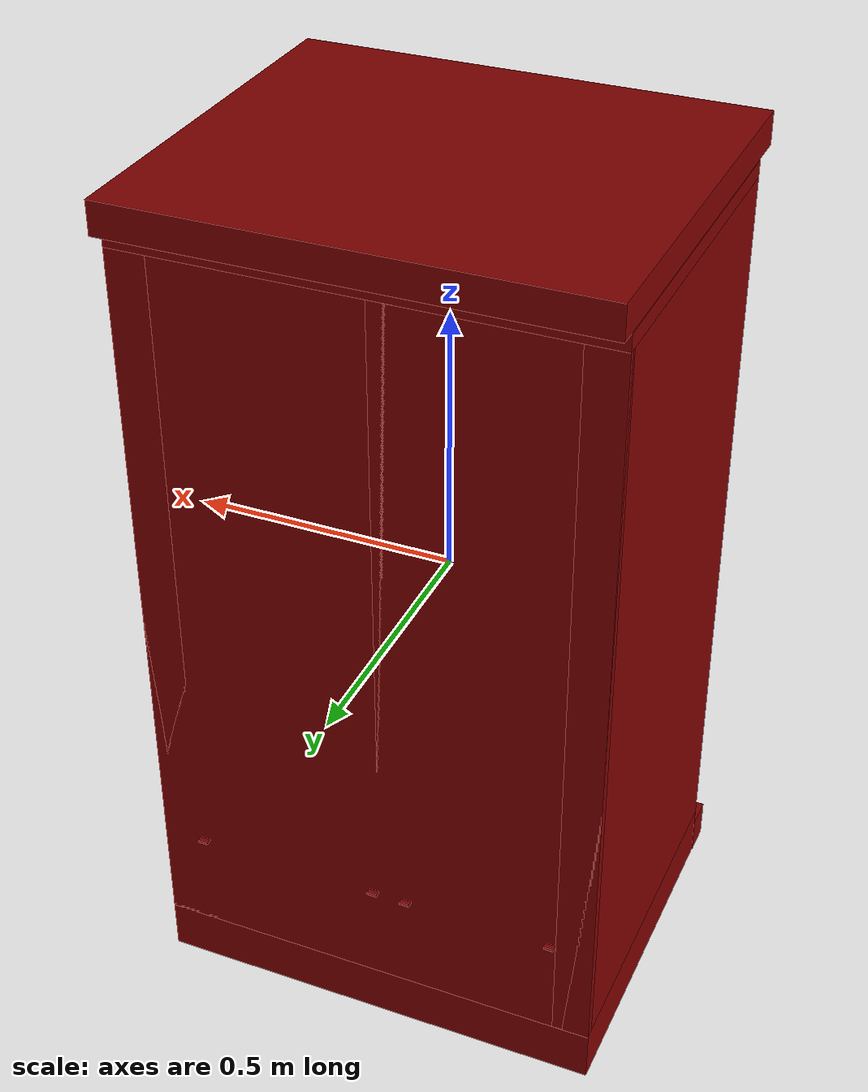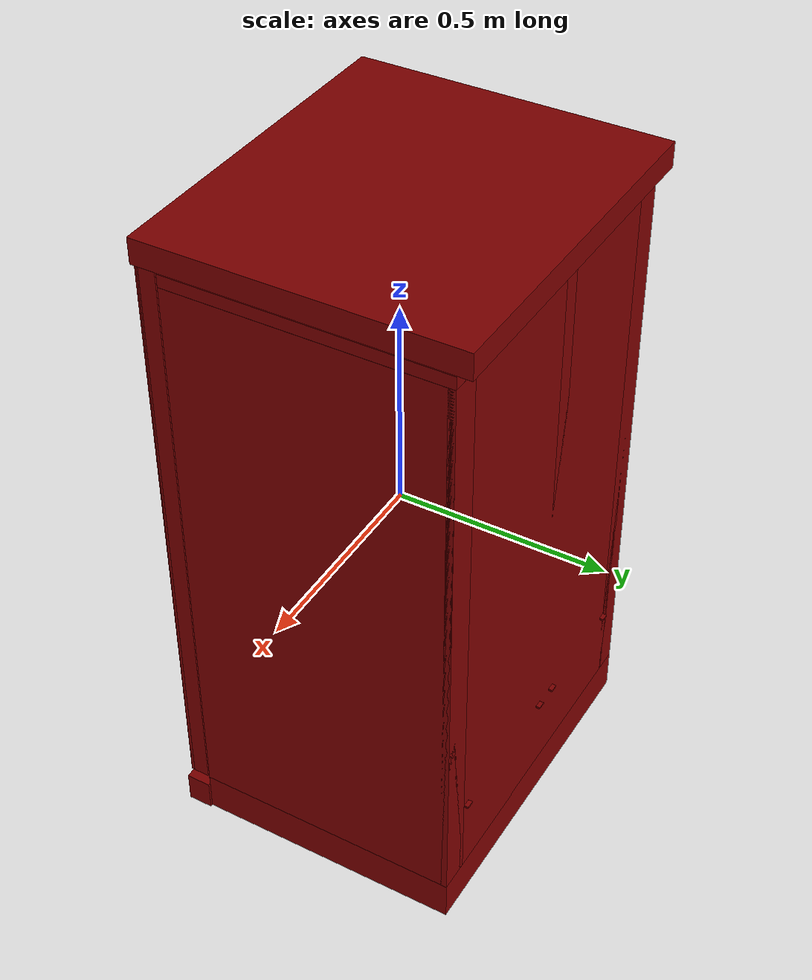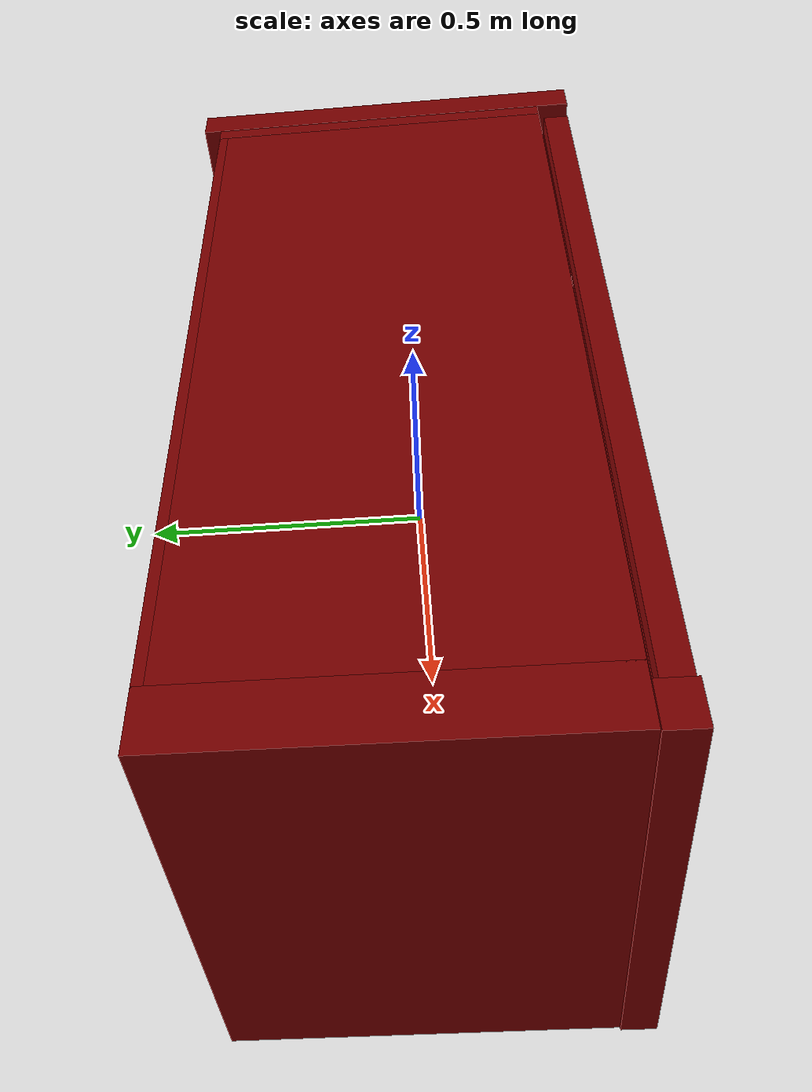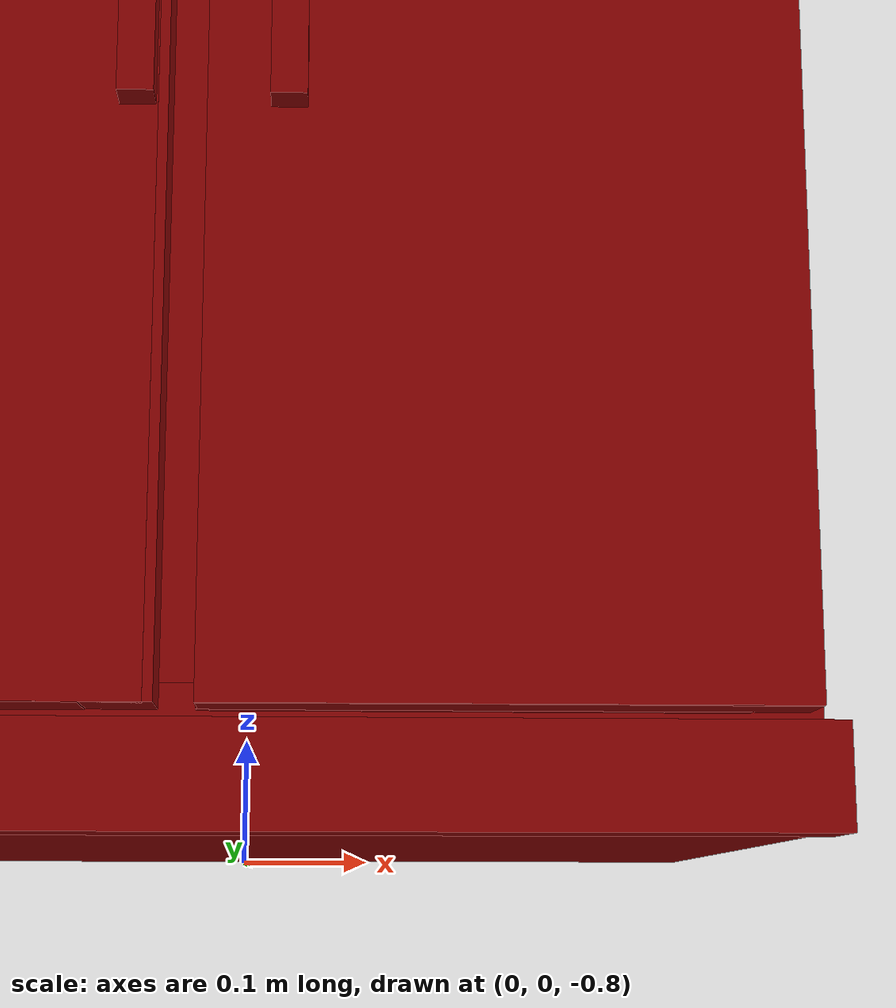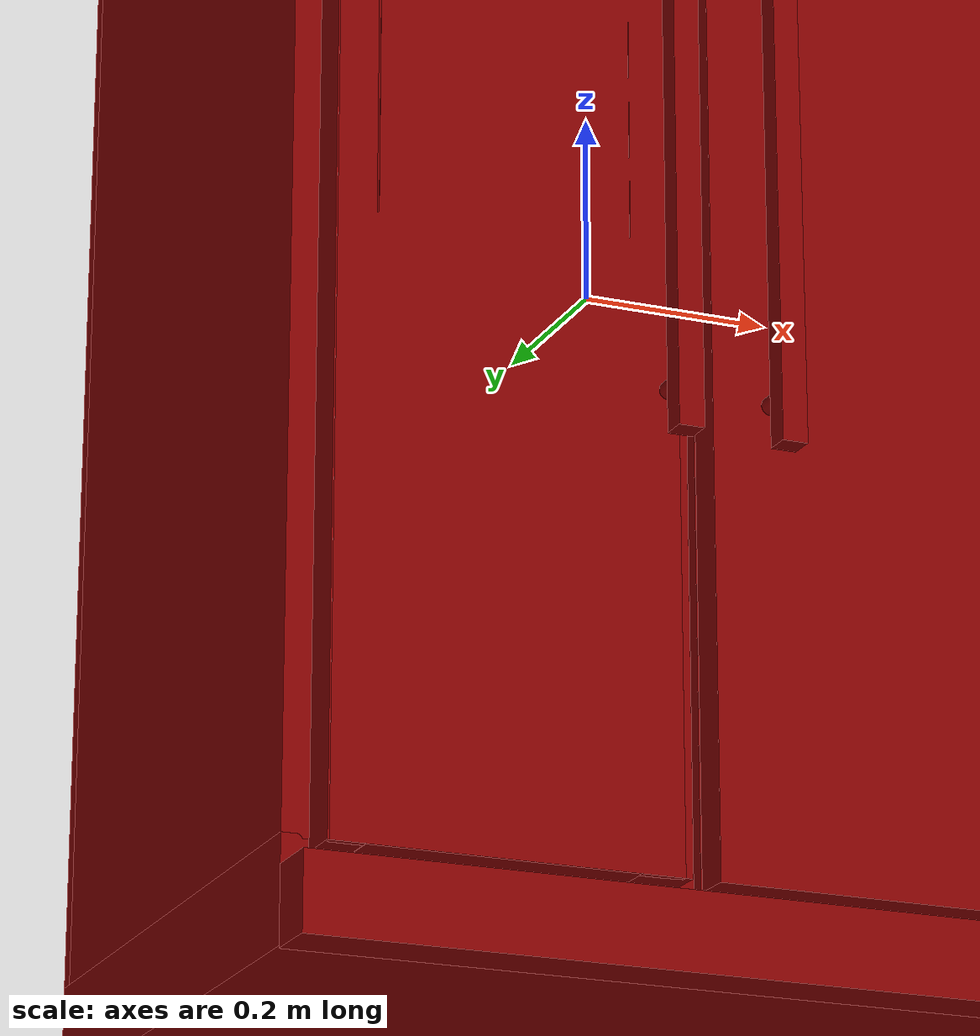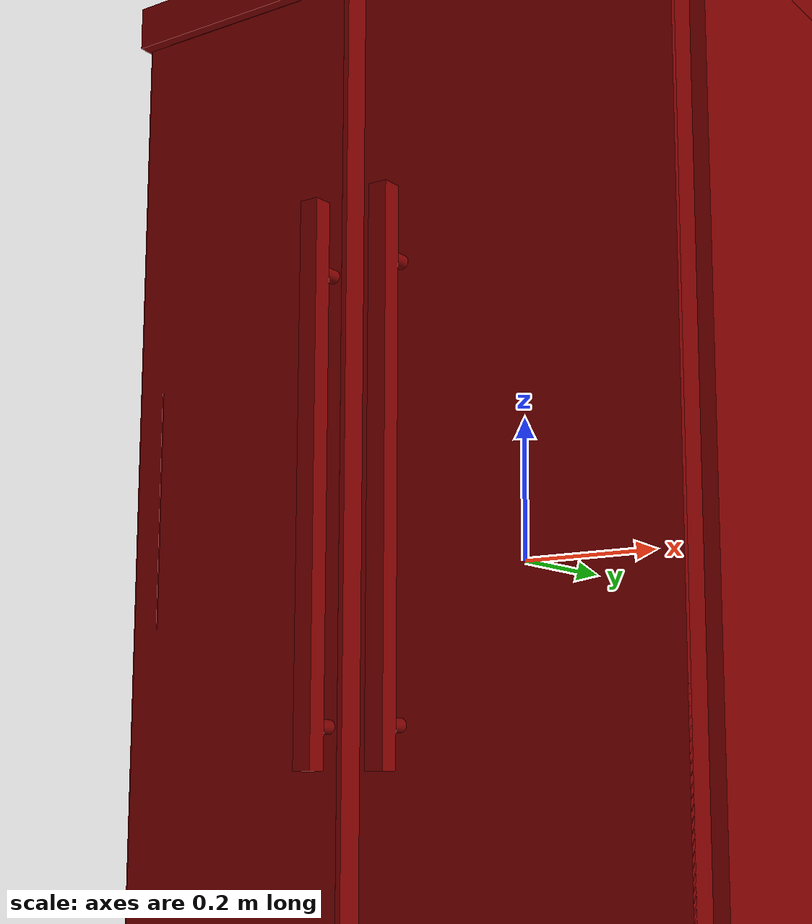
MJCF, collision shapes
<?xml version='1.0' encoding='UTF-8'?>
<mujoco model="model">
  <option timestep="0.002" gravity="0.0 0.0 -9.81"/>
  <compiler angle="radian"/>
  <asset>
    <mesh file="visuals/freezer_door.obj" name="freezer_door_vis"/>
    <mesh file="visuals/freezer_drawer0.obj" name="freezer_drawer0_vis"/>
    <mesh file="visuals/freezer_drawer1.obj" name="freezer_drawer1_vis"/>
    <mesh file="visuals/fridge_door.obj" name="fridge_door_vis"/>
    <mesh file="visuals/fridge_door_Clear.obj" name="fridge_door_Clear_vis"/>
    <mesh file="visuals/fridge_drawer0.obj" name="fridge_drawer0_vis"/>
    <mesh file="visuals/fridge_drawer1.obj" name="fridge_drawer1_vis"/>
    <mesh file="visuals/Body001.obj" name="Body001_vis"/>
    <mesh file="visuals/Body001_Clear.obj" name="Body001_Clear_vis"/>
    <texture file="visuals/T_BC001.png" name="Body001_material" type="2d"/>
    <material name="Body001_material" rgba="1 1 1 1.0" texture="Body001_material" shininess="3" specular="3"/>
    <texture file="visuals/T_BC001.png" name="freezer_door_material" type="2d"/>
    <material name="freezer_door_material" rgba="1 1 1 1.0" texture="freezer_door_material" shininess="3" specular="3"/>
    <texture file="visuals/T_BC001.png" name="freezer_drawer0_material" type="2d"/>
    <material name="freezer_drawer0_material" rgba="1 1 1 1.0" texture="freezer_drawer0_material" shininess="0.5" specular="0.3103448502657381"/>
    <texture file="visuals/T_BC001.png" name="freezer_drawer1_material" type="2d"/>
    <material name="freezer_drawer1_material" rgba="1 1 1 1.0" texture="freezer_drawer1_material" shininess="0.5" specular="0.3103448502657381"/>
    <texture file="visuals/T_BC001.png" name="fridge_door_material" type="2d"/>
    <material name="fridge_door_material" rgba="1 1 1 1.0" texture="fridge_door_material" shininess="3" specular="3"/>
    <texture file="visuals/T_BC001.png" name="fridge_door_Clear_material" type="2d"/>
    <material name="fridge_door_Clear_material" rgba="1 1 1 0.699999988079071" texture="fridge_door_Clear_material" shininess="0.5" specular="0.3103448502657381"/>
    <texture file="visuals/T_BC001.png" name="fridge_drawer0_material" type="2d"/>
    <material name="fridge_drawer0_material" rgba="1 1 1 1.0" texture="fridge_drawer0_material" shininess="0.5" specular="0.3103448502657381"/>
    <texture file="visuals/T_BC001.png" name="fridge_drawer1_material" type="2d"/>
    <material name="fridge_drawer1_material" rgba="1 1 1 1.0" texture="fridge_drawer1_material" shininess="0.5" specular="0.3103448502657381"/>
    <texture file="visuals/T_BC001.png" name="Body001_Clear_material" type="2d"/>
    <material name="Body001_Clear_material" rgba="1 1 1 0.699999988079071" texture="Body001_Clear_material" shininess="0.5" specular="0.3103448502657381"/>
  </asset>
  <default>
    <default class="visual">
      <geom conaffinity="0" contype="0" group="1" type="mesh"/>
    </default>
    <default class="collision">
      <geom group="0" rgba="0.5 0 0 0.5"/>
    </default>
    <default class="spawn">
      <geom group="0" rgba="1 1 1 0.5" contype="0" conaffinity="0"/>
      <site group="0" rgba="1 1 1 0.5"/>
    </default>
    <default class="region">
      <geom group="1" conaffinity="0" contype="0" rgba="0 1 0 0"/>
    </default>
  </default>
  <worldbody>
    <body>
      <body name="object">
        <geom mesh="Body001_vis" type="mesh" solimp="0.998 0.998 0.001" solref="0.001 1" friction="0.95 0.3 0.1" class="visual" material="Body001_material"/>
        <geom class="collision" type="box" pos="0.38383505 0.03998145 0.00518786" size="0.03646550327539444 0.322449654340744 0.6934295892715454" quat="1.0 0.0 0.0 0.0"/>
        <geom class="collision" type="box" pos="-0.00214578 0.02617918 0.76037264" size="0.4224463999271393 0.36914530396461487 0.029827851802110672" quat="1.0 0.0 0.0 0.0"/>
        <geom class="collision" type="box" pos="-0.00004694 -0.31333767 -0.75195026" size="0.4249330759048462 0.029750250279903412 0.03825020417571068" quat="1.0 0.0 0.0 0.0"/>
        <geom class="collision" type="box" pos="-0.00214572 0.03998147 0.71371764" size="0.4224463105201721 0.32244962453842163 0.014865054748952389" quat="1.0 0.0 0.0 0.0"/>
        <geom class="collision" type="box" pos="-0.00214575 0.03998147 -0.73591709" size="0.4224463105201721 0.32244962453842163 0.05181913077831268" quat="1.0 0.0 0.0 0.0"/>
        <geom class="collision" type="box" pos="-0.04039519 0.04212865 0.00559620" size="0.02145828865468502 0.32030245661735535 0.6938378810882568" quat="1.0 0.0 0.0 0.0"/>
        <geom class="collision" type="box" pos="-0.38995200 0.03998149 0.00518791" size="0.03464001044631004 0.322449654340744 0.6934296488761902" quat="1.0 0.0 0.0 0.0"/>
        <geom class="collision" type="box" pos="-0.00214578 0.05851967 0.38066024" size="0.38787147402763367 0.27719253301620483 0.0062972065061330795" quat="1.0 0.0 0.0 0.0"/>
        <geom class="collision" type="box" pos="-0.00214578 0.05923316 0.03786649" size="0.38787147402763367 0.276479035615921 0.006297166924923658" quat="1.0 0.0 0.0 0.0"/>
        <geom class="collision" type="box" pos="-0.00214579 0.05678691 -0.28944901" size="0.38787147402763367 0.2789252698421478 0.006297187879681587" quat="1.0 0.0 0.0 0.0"/>
        <geom class="collision" type="box" pos="-0.00214574 0.35394404 0.00494900" size="0.4224463105201721 0.008487078361213207 0.6936686038970947" quat="1.0 0.0 0.0 0.0"/>
        <geom class="collision" type="box" pos="-0.00377894 0.06721820 -0.67916328" size="0.3577331006526947 0.2777063250541687 0.013940704986453056" quat="1.0 0.0 0.0 0.0"/>
        <geom class="collision" type="box" pos="-0.34586567 0.05535230 -0.48693025" size="0.31735289096832275 0.00965599250048399 0.00226782588288188" quat="0.7071068286895752 0.0 -0.0 -0.7071067690849304"/>
        <geom class="collision" type="box" pos="-0.07106942 0.05535230 -0.48693025" size="0.31735289096832275 0.00965599250048399 0.00226782588288188" quat="0.7071068286895752 0.0 -0.0 -0.7071067690849304"/>
        <geom class="collision" type="box" pos="-0.00756095 0.05535230 -0.48693025" size="0.31735289096832275 0.00965599250048399 0.00226782588288188" quat="0.7071068286895752 0.0 -0.0 -0.7071067690849304"/>
        <geom class="collision" type="box" pos="0.33626419 0.05535230 -0.48693025" size="0.31735289096832275 0.00965599250048399 0.00226782588288188" quat="0.7071068286895752 0.0 -0.0 -0.7071067690849304"/>
        <geom class="collision" type="box" pos="-0.20818914 0.05678691 -0.28994015" size="0.13095246255397797 0.27287790179252625 0.0022909939289093018" quat="1.0 0.0 0.0 0.0"/>
        <geom class="collision" type="box" pos="-0.20818914 0.05678691 0.03799176" size="0.13095246255397797 0.27287790179252625 0.0022909939289093018" quat="1.0 0.0 0.0 0.0"/>
        <geom class="collision" type="box" pos="-0.20818914 0.05678691 0.38120002" size="0.13095246255397797 0.27287790179252625 0.0022909939289093018" quat="1.0 0.0 0.0 0.0"/>
        <geom class="collision" type="box" pos="0.16203110 0.05678691 -0.28755271" size="0.17076264321804047 0.27287787199020386 0.0022909939289093018" quat="1.0 0.0 0.0 0.0"/>
        <geom class="collision" type="box" pos="0.16203110 0.05678691 0.03799176" size="0.17076264321804047 0.27287787199020386 0.0022909939289093018" quat="1.0 0.0 0.0 0.0"/>
        <geom class="collision" type="box" pos="0.16203110 0.05678691 0.38120002" size="0.17076264321804047 0.27287787199020386 0.0022909939289093018" quat="1.0 0.0 0.0 0.0"/>
        <body name="freezer_door">
          <joint axis="0.0 0.0 -1.0" pos="-0.39619040 -0.32760679 0.00880086" limited="true" name="freezer_door_joint" range="0.0 1.5707963267948966" type="hinge" damping="1" frictionloss="1" armature=".01" stiffness="0.05"/>
          <geom mesh="freezer_door_vis" type="mesh" solimp="0.998 0.998 0.001" solref="0.001 1" friction="0.95 0.3 0.1" class="visual" material="freezer_door_material"/>
          <geom class="collision" type="cylinder" pos="-0.06993533 -0.35388084 0.32831600" size="0.008896256797015667 0.014692937955260277" quat="0.7071068286895752 -0.7071067690849304 1.5700924318127872e-16 -5.9269340452702814e-24" name="freezer_door_handle_1"/>
          <geom class="collision" type="cylinder" pos="-0.06993533 -0.35388084 -0.23520246" size="0.008896256797015667 0.014692937955260277" quat="0.7071068286895752 -0.7071067690849304 1.5700924318127872e-16 -5.9269340452702814e-24" name="freezer_door_handle_2"/>
          <geom class="collision" type="box" pos="-0.06993533 -0.38267677 0.06373703" size="0.012895453721284866 0.012895453721284866 0.3521200120449066" quat="1.0 0.0 0.0 0.0" name="freezer_door_handle_main"/>
          <geom class="collision" type="cylinder" pos="-0.25049356 -0.30639537 0.19741745" size="0.010181399993598461 0.010181399993598461" quat="1.0 0.0 0.0 0.0"/>
          <geom class="collision" type="cylinder" pos="-0.21706671 -0.30639537 0.19741745" size="0.010181399993598461 0.010181399993598461" quat="1.0 0.0 0.0 0.0"/>
          <geom class="collision" type="box" pos="-0.07586558 -0.31890284 0.00772965" size="0.02501419559121132 0.024184858426451683 0.7119569778442383" quat="1.0 0.0 0.0 0.0"/>
          <geom class="collision" type="box" pos="-0.21666807 -0.25745811 0.13164932" size="0.11925533413887024 0.003282485529780388 0.23824262619018555" quat="1.0 0.0 0.0 0.0"/>
          <geom class="collision" type="box" pos="-0.23415622 -0.31875884 0.46798432" size="0.13262173533439636 0.02432965114712715 0.25266319513320923" quat="1.0 0.0 0.0 0.0"/>
          <geom class="collision" type="box" pos="-0.23415622 -0.31875884 -0.40140218" size="0.13262173533439636 0.02432965114712715 0.30325227975845337" quat="1.0 0.0 0.0 0.0"/>
          <geom class="collision" type="box" pos="-0.38461274 -0.31968262 0.00772965" size="0.018470726907253265 0.02340586483478546 0.7119569778442383" quat="1.0 0.0 0.0 0.0"/>
          <geom class="collision" type="box" pos="-0.10412516 -0.27075457 0.13164932" size="0.0067124078050255775 0.015388263389468193 0.23824262619018555" quat="1.0 0.0 0.0 0.0"/>
          <geom class="collision" type="box" pos="-0.34602317 -0.27075457 0.13164932" size="0.006712410133332014 0.015388268046081066 0.23824262619018555" quat="1.0 0.0 0.0 0.0"/>
          <geom class="collision" type="box" pos="-0.23265769 -0.27075454 0.36039117" size="0.12181933969259262 0.015388261526823044 0.00950080156326294" quat="1.0 0.0 0.0 0.0"/>
          <geom class="collision" type="box" pos="-0.23348415 -0.30625858 0.21262473" size="0.04262097552418709 0.029891489073634148 0.0052091944962739944" quat="1.0 0.0 0.0 0.0"/>
          <geom class="collision" type="box" pos="-0.34976411 -0.31625079 0.05758024" size="0.003867596387863159 0.029820457100868225 0.15966156125068665" quat="0.966834306716919 0.0 -0.0 -0.25540444254875183"/>
          <geom class="collision" type="box" pos="-0.30678499 -0.27768849 0.05758024" size="0.003867596387863159 0.029820457100868225 0.15966156125068665" quat="0.8436958193778992 0.0 -0.0 -0.5368215441703796"/>
          <geom class="collision" type="box" pos="-0.25313073 -0.26325565 0.05758024" size="0.003867596387863159 0.029820457100868225 0.15966156125068665" quat="0.7231791019439697 0.0 -0.0 -0.6906605362892151"/>
          <geom class="collision" type="box" pos="-0.19605176 -0.26721038 0.05758024" size="0.003867596387863159 0.029820457100868225 0.15966156125068665" quat="0.6374496817588806 0.0 -0.0 -0.7704920172691345"/>
          <geom class="collision" type="box" pos="-0.14504759 -0.28820728 0.05758024" size="0.003867596387863159 0.029820457100868225 0.15966156125068665" quat="0.4350873529911041 0.0 -0.0 -0.900388240814209"/>
          <geom class="collision" type="box" pos="-0.11770643 -0.31525459 0.05758024" size="0.003867596387863159 0.029820457100868225 0.15966156125068665" quat="0.2398415058851242 0.0 -0.0 -0.9708120822906494"/>
          <geom class="collision" type="box" pos="-0.23121561 -0.27198448 -0.10719675" size="0.12037744373083115 0.015388283878564835 0.00950080156326294" quat="1.0 0.0 0.0 0.0"/>
          <geom class="collision" type="box" pos="-0.22977576 -0.33939906 0.00772965" size="0.1715831756591797 0.0037881401367485523 0.7119569778442383" quat="1.0 0.0 0.0 0.0" name="freezer_door_main"/>
        </body>
        <body name="freezer_drawer0">
          <geom class="region" name="reg_freezer_drawer0" type="box" pos="-0.20808038 0.05721572999999999 -0.56131062" size="0.10610704 0.22363607 0.06070278000000001"/>
          <joint axis="0.0 -1.0 0.0" pos="-0.20888010 0.05603838 -0.57716066" limited="true" name="freezer_drawer0_joint" range="0.0 0.45" type="slide" damping="1" frictionloss="1" armature=".01" stiffness="0.05"/>
          <geom mesh="freezer_drawer0_vis" type="mesh" solimp="0.998 0.998 0.001" solref="0.001 1" friction="0.95 0.3 0.1" class="visual" material="freezer_drawer0_material"/>
          <geom class="collision" type="box" pos="-0.08178551 0.05359116 -0.57591414" size="0.013865518383681774 0.25222688913345337 0.07981566339731216" quat="1.0 0.0 0.0 0.0"/>
          <geom class="collision" type="box" pos="-0.33460492 0.05359116 -0.57591414" size="0.013865518383681774 0.25222688913345337 0.07981566339731216" quat="1.0 0.0 0.0 0.0"/>
          <geom class="collision" type="box" pos="-0.20778373 0.29956273 -0.57591414" size="0.13929221034049988 0.013865530490875244 0.07981564849615097" quat="1.0 0.0 0.0 0.0"/>
          <geom class="collision" type="box" pos="-0.20844597 0.05359116 -0.64264089" size="0.13847585022449493 0.2522260248661041 0.013865477405488491" quat="1.0 0.0 0.0 0.0"/>
          <geom class="collision" type="box" pos="-0.20822228 -0.19671773 -0.51305813" size="0.11325066536664963 0.0023302885238081217 0.016671616584062576" quat="1.0 0.0 0.0 0.0"/>
          <geom class="collision" type="box" pos="-0.20822228 -0.18741340 -0.59859121" size="0.11325111240148544 0.011274444870650768 0.03161946311593056" quat="1.0 0.0 0.0 0.0"/>
          <geom class="collision" type="box" pos="-0.20822228 -0.17395503 -0.56284678" size="0.11325068026781082 0.0023302878253161907 0.06617952883243561" quat="1.0 0.0 0.0 0.0"/>
          <geom class="collision" type="box" pos="-0.11140975 -0.18558300 -0.53587246" size="0.01694931648671627 0.013577436096966267 0.030062008649110794" quat="1.0 0.0 0.0 0.0"/>
          <geom class="collision" type="box" pos="-0.30663583 -0.18558300 -0.53587246" size="0.01694931648671627 0.013577437028288841 0.030062008649110794" quat="1.0 0.0 0.0 0.0"/>
          <geom class="collision" type="box" pos="-0.20914169 -0.17488546 -0.53984827" size="0.08140743523836136 0.0030936761759221554 0.028999662026762962" quat="1.0 0.0 0.0 0.0"/>
          <geom class="collision" type="box" pos="-0.20822228 -0.18565050 -0.50558341" size="0.11325106024742126 0.009566276334226131 0.009375891648232937" quat="1.0 0.0 0.0 0.0"/>
        </body>
        <body name="freezer_drawer1">
          <geom class="region" name="reg_freezer_drawer1" type="box" pos="-0.20808038 0.05721572999999999 -0.38275688500000005" size="0.10610704 0.22363607 0.060242875"/>
          <joint axis="0.0 -1.0 0.0" pos="-0.20888010 0.05603838 -0.39775580" limited="true" name="freezer_drawer1_joint" range="0.0 0.45" type="slide" damping="1" frictionloss="1" armature=".01" stiffness="0.05"/>
          <geom mesh="freezer_drawer1_vis" type="mesh" solimp="0.998 0.998 0.001" solref="0.001 1" friction="0.95 0.3 0.1" class="visual" material="freezer_drawer1_material"/>
          <geom class="collision" type="box" pos="-0.08178551 0.05359116 -0.39738908" size="0.013865518383681774 0.25222688913345337 0.07981566339731216" quat="1.0 0.0 0.0 0.0"/>
          <geom class="collision" type="box" pos="-0.33460492 0.05359116 -0.39738908" size="0.013865518383681774 0.25222688913345337 0.07981566339731216" quat="1.0 0.0 0.0 0.0"/>
          <geom class="collision" type="box" pos="-0.20778373 0.29956273 -0.39738908" size="0.13929221034049988 0.013865530490875244 0.07981564849615097" quat="1.0 0.0 0.0 0.0"/>
          <geom class="collision" type="box" pos="-0.20844597 0.05359116 -0.46411586" size="0.13847585022449493 0.25222575664520264 0.013865462504327297" quat="1.0 0.0 0.0 0.0"/>
          <geom class="collision" type="box" pos="-0.20822228 -0.19671773 -0.33453313" size="0.11325066536664963 0.00233029224909842 0.01667163148522377" quat="1.0 0.0 0.0 0.0"/>
          <geom class="collision" type="box" pos="-0.20822228 -0.18741340 -0.42006624" size="0.11325126141309738 0.011274444870650768 0.031619492918252945" quat="1.0 0.0 0.0 0.0"/>
          <geom class="collision" type="box" pos="-0.20822228 -0.17395503 -0.38432175" size="0.11325068026781082 0.002330291550606489 0.06617952883243561" quat="1.0 0.0 0.0 0.0"/>
          <geom class="collision" type="box" pos="-0.11140975 -0.18558300 -0.35734743" size="0.01694931648671627 0.01357742678374052 0.030062008649110794" quat="1.0 0.0 0.0 0.0"/>
          <geom class="collision" type="box" pos="-0.30663583 -0.18558300 -0.35734743" size="0.01694931648671627 0.013577427715063095 0.030062008649110794" quat="1.0 0.0 0.0 0.0"/>
          <geom class="collision" type="box" pos="-0.20914169 -0.17488546 -0.36132330" size="0.08140743523836136 0.0030936761759221554 0.028999662026762962" quat="1.0 0.0 0.0 0.0"/>
          <geom class="collision" type="box" pos="-0.20822228 -0.18565050 -0.32705837" size="0.1132512092590332 0.009566276334226131 0.009375900030136108" quat="1.0 0.0 0.0 0.0"/>
        </body>
        <body name="fridge_door">
          <joint axis="0.0 0.0 1.0" pos="0.39498666 -0.32333179 0.00880086" limited="true" name="fridge_door_joint" range="0.0 1.5707963267948966" type="hinge" damping="1" frictionloss="1" armature=".01" stiffness="0.05"/>
          <geom mesh="fridge_door_vis" type="mesh" solimp="0.998 0.998 0.001" solref="0.001 1" friction="0.95 0.3 0.1" class="visual" material="fridge_door_material"/>
          <geom class="collision" type="box" pos="0.17998543 -0.26381408 0.39253891" size="0.14785245060920715 0.028714507818222046 0.006003677845001221" quat="1.0 0.0 0.0 0.0"/>
          <geom class="collision" type="box" pos="0.17998543 -0.23284780 0.43109053" size="0.14785245060920715 0.0055883899331092834 0.035769760608673096" quat="1.0 0.0 0.0 0.0"/>
          <geom class="collision" type="box" pos="0.33303601 -0.26381408 0.42669776" size="0.005198165774345398 0.028714507818222046 0.04016253352165222" quat="1.0 0.0 0.0 0.0"/>
          <geom class="collision" type="box" pos="0.02569196 -0.26381408 0.42669776" size="0.006441004574298859 0.028714507818222046 0.04016253352165222" quat="1.0 0.0 0.0 0.0"/>
          <geom class="collision" type="box" pos="0.17998543 -0.26381408 0.17132746" size="0.14785245060920715 0.028714507818222046 0.006003677845001221" quat="1.0 0.0 0.0 0.0"/>
          <geom class="collision" type="box" pos="0.17998543 -0.23284780 0.20987909" size="0.14785245060920715 0.0055883899331092834 0.035769760608673096" quat="1.0 0.0 0.0 0.0"/>
          <geom class="collision" type="box" pos="0.33303601 -0.26381408 0.20548631" size="0.005198165774345398 0.028714507818222046 0.04016253352165222" quat="1.0 0.0 0.0 0.0"/>
          <geom class="collision" type="box" pos="0.02569196 -0.26381408 0.20548631" size="0.006441004574298859 0.028714507818222046 0.04016253352165222" quat="1.0 0.0 0.0 0.0"/>
          <geom class="collision" type="cylinder" pos="0.03618522 -0.35388084 -0.23520246" size="0.008896256797015667 0.014692937955260277" quat="0.7071068286895752 -0.7071067690849304 1.5700924318127872e-16 -5.9269340452702814e-24" name="fridge_door_handle_1"/>
          <geom class="collision" type="cylinder" pos="0.03618522 -0.35388084 0.32831600" size="0.008896256797015667 0.014692937955260277" quat="0.7071068286895752 -0.7071067690849304 1.5700924318127872e-16 -5.9269340452702814e-24" name="fridge_door_handle_2"/>
          <geom class="collision" type="box" pos="0.03618522 -0.38267677 0.06373703" size="0.012895453721284866 0.012895453721284866 0.3521200120449066" quat="1.0 0.0 0.0 0.0" name="fridge_door_handle_main"/>
          <geom class="collision" type="box" pos="0.19201809 -0.31977167 0.00772965" size="0.2153407782316208 0.023316770792007446 0.7119569778442383" quat="1.0 0.0 0.0 0.0"/>
          <geom class="collision" type="box" pos="0.17073154 -0.29547625 0.00772965" size="0.1955065280199051 0.007539153099060059 0.7119569778442383" quat="1.0 0.0 0.0 0.0"/>
          <geom class="collision" type="box" pos="0.19201809 -0.33939906 0.00772965" size="0.2153407782316208 0.0037881406024098396 0.7119569778442383" quat="1.0 0.0 0.0 0.0" name="fridge_door_main"/>
          <body name="fridge_door_Clear">
            <geom mesh="fridge_door_Clear_vis" type="mesh" solimp="0.998 0.998 0.001" solref="0.001 1" friction="0.95 0.3 0.1" class="visual" material="fridge_door_Clear_material"/>
            <geom class="collision" type="box" pos="0.17998543 -0.26381408 0.39253891" size="0.14785245060920715 0.028714507818222046 0.006003677845001221" quat="1.0 0.0 0.0 0.0"/>
            <geom class="collision" type="box" pos="0.17998543 -0.23284780 0.43109053" size="0.14785245060920715 0.0055883899331092834 0.035769760608673096" quat="1.0 0.0 0.0 0.0"/>
            <geom class="collision" type="box" pos="0.33303601 -0.26381408 0.42669776" size="0.005198165774345398 0.028714507818222046 0.04016253352165222" quat="1.0 0.0 0.0 0.0"/>
            <geom class="collision" type="box" pos="0.02569196 -0.26381408 0.42669776" size="0.006441004574298859 0.028714507818222046 0.04016253352165222" quat="1.0 0.0 0.0 0.0"/>
            <geom class="collision" type="box" pos="0.17998543 -0.26381408 0.17132746" size="0.14785245060920715 0.028714507818222046 0.006003677845001221" quat="1.0 0.0 0.0 0.0"/>
            <geom class="collision" type="box" pos="0.17998543 -0.23284780 0.20987909" size="0.14785245060920715 0.0055883899331092834 0.035769760608673096" quat="1.0 0.0 0.0 0.0"/>
            <geom class="collision" type="box" pos="0.33303601 -0.26381408 0.20548631" size="0.005198165774345398 0.028714507818222046 0.04016253352165222" quat="1.0 0.0 0.0 0.0"/>
            <geom class="collision" type="box" pos="0.02569196 -0.26381408 0.20548631" size="0.006441004574298859 0.028714507818222046 0.04016253352165222" quat="1.0 0.0 0.0 0.0"/>
          </body>
        </body>
        <body name="fridge_drawer0">
          <geom class="region" name="reg_fridge_drawer0" type="box" pos="0.16696930999999998 0.05708895 -0.561567095" size="0.13512838 0.22363607 0.06070278500000004"/>
          <joint axis="0.0 -1.0 0.0" pos="0.16640571 0.05603838 -0.57716066" limited="true" name="fridge_drawer0_joint" range="0.0 0.45" type="slide" damping="1" frictionloss="1" armature=".01" stiffness="0.05"/>
          <geom mesh="fridge_drawer0_vis" type="mesh" solimp="0.998 0.998 0.001" solref="0.001 1" friction="0.95 0.3 0.1" class="visual" material="fridge_drawer0_material"/>
          <geom class="collision" type="box" pos="0.32092643 0.05359116 -0.57484126" size="0.013865518383681774 0.25222688913345337 0.07981566339731216" quat="1.0 0.0 0.0 0.0"/>
          <geom class="collision" type="box" pos="0.01167719 0.05359116 -0.57484126" size="0.013865518383681774 0.25222688913345337 0.07981566339731216" quat="1.0 0.0 0.0 0.0"/>
          <geom class="collision" type="box" pos="0.17113182 0.29956273 -0.57484126" size="0.13929221034049988 0.013865530490875244 0.07981564849615097" quat="1.0 0.0 0.0 0.0"/>
          <geom class="collision" type="box" pos="0.17046958 0.05359116 -0.64156806" size="0.13847585022449493 0.2522265613079071 0.013865509070456028" quat="1.0 0.0 0.0 0.0"/>
          <geom class="collision" type="box" pos="0.17069326 -0.19671773 -0.51198524" size="0.11325066536664963 0.0023302810732275248 0.01667158491909504" quat="1.0 0.0 0.0 0.0"/>
          <geom class="collision" type="box" pos="0.17069326 -0.18741340 -0.59751838" size="0.14158396422863007 0.011274438351392746 0.031619373708963394" quat="1.0 0.0 0.0 0.0"/>
          <geom class="collision" type="box" pos="0.17069326 -0.17395503 -0.56177396" size="0.11325068026781082 0.002330280374735594 0.06617952883243561" quat="1.0 0.0 0.0 0.0"/>
          <geom class="collision" type="box" pos="0.27930254 -0.18558300 -0.53479952" size="0.02624029666185379 0.013577478006482124 0.030062032863497734" quat="1.0 0.0 0.0 0.0"/>
          <geom class="collision" type="box" pos="0.04392109 -0.18558300 -0.53479952" size="0.01694931648671627 0.013577454723417759 0.030062008649110794" quat="1.0 0.0 0.0 0.0"/>
          <geom class="collision" type="box" pos="0.15443327 -0.17488546 -0.53877544" size="0.09797116369009018 0.003093674313277006 0.028999662026762962" quat="1.0 0.0 0.0 0.0"/>
          <geom class="collision" type="box" pos="0.17069326 -0.18565050 -0.50451058" size="0.14270099997520447 0.009566282853484154 0.00937587395310402" quat="1.0 0.0 0.0 0.0"/>
        </body>
        <body name="fridge_drawer1">
          <geom class="region" name="reg_fridge_drawer1" type="box" pos="0.16696930999999998 0.05708895 -0.383013395" size="0.13512838 0.22363607 0.060242875"/>
          <joint axis="0.0 -1.0 0.0" pos="0.16640571 0.05603838 -0.39654502" limited="true" name="fridge_drawer1_joint" range="0.0 0.45" type="slide" damping="1" frictionloss="1" armature=".01" stiffness="0.05"/>
          <geom mesh="fridge_drawer1_vis" type="mesh" solimp="0.998 0.998 0.001" solref="0.001 1" friction="0.95 0.3 0.1" class="visual" material="fridge_drawer1_material"/>
          <geom class="collision" type="box" pos="0.32092643 0.05359116 -0.39527428" size="0.013865518383681774 0.25222688913345337 0.07981566339731216" quat="1.0 0.0 0.0 0.0"/>
          <geom class="collision" type="box" pos="0.01167719 0.05359116 -0.39527428" size="0.013865518383681774 0.25222688913345337 0.07981566339731216" quat="1.0 0.0 0.0 0.0"/>
          <geom class="collision" type="box" pos="0.17113182 0.29956273 -0.39527428" size="0.13929221034049988 0.013865530490875244 0.07981564849615097" quat="1.0 0.0 0.0 0.0"/>
          <geom class="collision" type="box" pos="0.17046958 0.05359116 -0.46200106" size="0.13847585022449493 0.2522262930870056 0.01386549323797226" quat="1.0 0.0 0.0 0.0"/>
          <geom class="collision" type="box" pos="0.17069326 -0.19671773 -0.33241829" size="0.11325066536664963 0.0023302847985178232 0.016671601682901382" quat="1.0 0.0 0.0 0.0"/>
          <geom class="collision" type="box" pos="0.17069326 -0.18741340 -0.41795138" size="0.14158396422863007 0.011274429038167 0.031619373708963394" quat="1.0 0.0 0.0 0.0"/>
          <geom class="collision" type="box" pos="0.17069326 -0.17395503 -0.38220695" size="0.11325068026781082 0.0023302841000258923 0.06617952883243561" quat="1.0 0.0 0.0 0.0"/>
          <geom class="collision" type="box" pos="0.27930254 -0.18558300 -0.35523260" size="0.02624032273888588 0.013577491976320744 0.030062058940529823" quat="1.0 0.0 0.0 0.0"/>
          <geom class="collision" type="box" pos="0.04392109 -0.18558300 -0.35523260" size="0.01694931648671627 0.013577445410192013 0.030062008649110794" quat="1.0 0.0 0.0 0.0"/>
          <geom class="collision" type="box" pos="0.16026208 -0.17488546 -0.35920843" size="0.09629002213478088 0.0030936761759221554 0.028999662026762962" quat="1.0 0.0 0.0 0.0"/>
          <geom class="collision" type="box" pos="0.17069326 -0.18565050 -0.32494357" size="0.14270099997520447 0.009566282853484154 0.00937587395310402" quat="1.0 0.0 0.0 0.0"/>
        </body>
        <body name="Body001_Clear">
          <geom mesh="Body001_Clear_vis" type="mesh" solimp="0.998 0.998 0.001" solref="0.001 1" friction="0.95 0.3 0.1" class="visual" material="Body001_Clear_material"/>
          <geom class="collision" type="box" pos="-0.20818914 0.05678691 -0.28994015" size="0.13095246255397797 0.27287790179252625 0.0022909939289093018" quat="1.0 0.0 0.0 0.0"/>
          <geom class="collision" type="box" pos="-0.20818914 0.05678691 0.03799176" size="0.13095246255397797 0.27287790179252625 0.0022909939289093018" quat="1.0 0.0 0.0 0.0"/>
          <geom class="collision" type="box" pos="-0.20818914 0.05678691 0.38120002" size="0.13095246255397797 0.27287790179252625 0.0022909939289093018" quat="1.0 0.0 0.0 0.0"/>
          <geom class="collision" type="box" pos="0.16203110 0.05678691 -0.28755271" size="0.17076264321804047 0.27287787199020386 0.0022909939289093018" quat="1.0 0.0 0.0 0.0"/>
          <geom class="collision" type="box" pos="0.16203110 0.05678691 0.03799176" size="0.17076264321804047 0.27287787199020386 0.0022909939289093018" quat="1.0 0.0 0.0 0.0"/>
          <geom class="collision" type="box" pos="0.16203110 0.05678691 0.38120002" size="0.17076264321804047 0.27287787199020386 0.0022909939289093018" quat="1.0 0.0 0.0 0.0"/>
        </body>
        <geom class="region" name="reg_freezer_shelf0" type="box" pos="-0.20873339000000002 0.05721229 -0.130267355" size="0.14045817 0.27927625 0.14668105499999998"/>
        <geom class="region" name="reg_freezer_shelf1" type="box" pos="-0.20873339000000002 0.05721229 0.20463077000000002" size="0.14045817 0.27927625 0.15453044"/>
        <geom class="region" name="reg_freezer_shelf2" type="box" pos="-0.20873339000000002 0.05721229 0.54134965" size="0.14045817 0.27927625 0.14726658000000004"/>
        <geom class="region" name="reg_fridge_shelf0" type="box" pos="0.16347198999999998 0.057085510000000006 -0.13052385500000002" size="0.17686631 0.27927625 0.146681055"/>
        <geom class="region" name="reg_fridge_shelf1" type="box" pos="0.16347198999999998 0.057085510000000006 0.20437426" size="0.17686631 0.27927625 0.15453044000000002"/>
        <geom class="region" name="reg_fridge_shelf2" type="box" pos="0.16347198999999998 0.057085510000000006 0.541093155" size="0.17686631 0.27927625 0.14726659500000003"/>
        <geom class="region" name="reg_main" type="box" pos="4.999999997368221e-09 0.02468775000000001 0.0" size="0.42602042500000004 0.37163664 0.79120029"/>
      </body>
    </body>
  </worldbody>
  <actuator>
    <motor name="freezer_door_joint_actuator" joint="freezer_door_joint" gear="50"/>
    <motor name="freezer_drawer0_joint_actuator" joint="freezer_drawer0_joint" gear="50"/>
    <motor name="freezer_drawer1_joint_actuator" joint="freezer_drawer1_joint" gear="50"/>
    <motor name="fridge_door_joint_actuator" joint="fridge_door_joint" gear="50"/>
    <motor name="fridge_drawer0_joint_actuator" joint="fridge_drawer0_joint" gear="50"/>
    <motor name="fridge_drawer1_joint_actuator" joint="fridge_drawer1_joint" gear="50"/>
  </actuator>
</mujoco>
